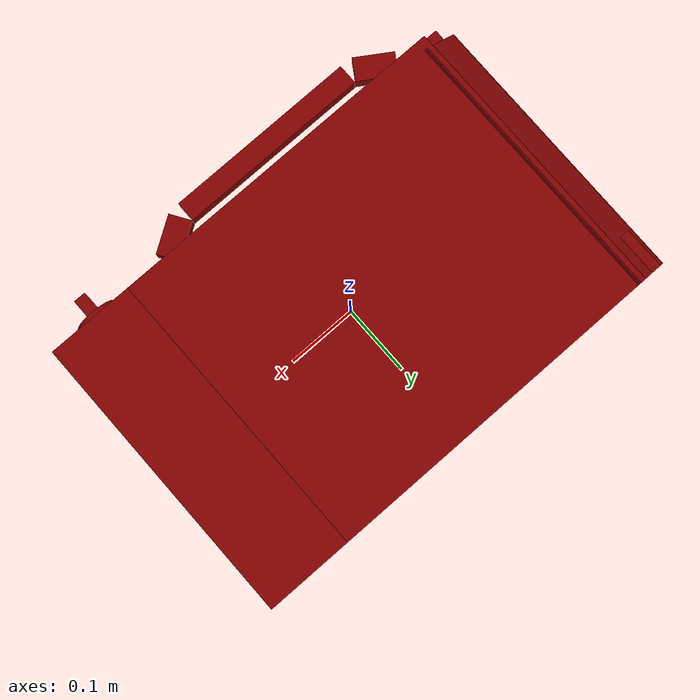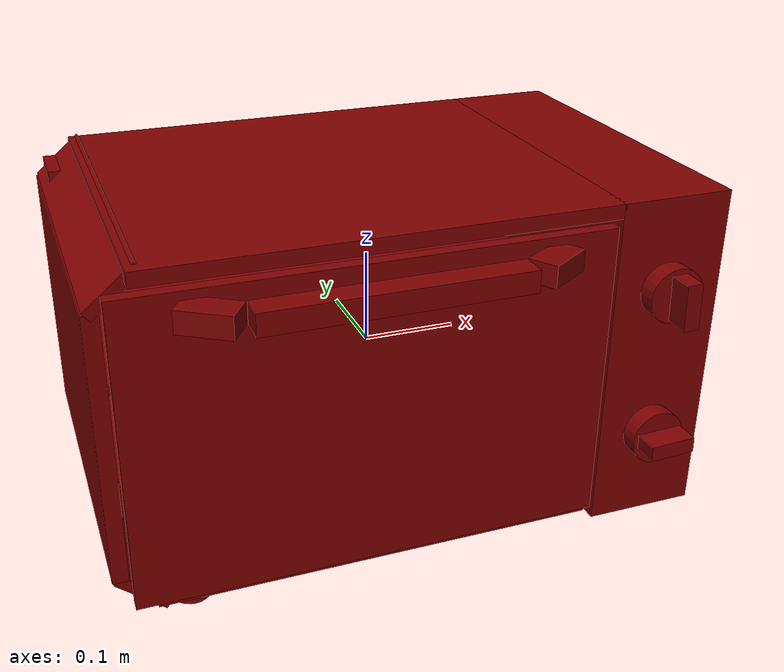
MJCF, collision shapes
<?xml version='1.0' encoding='UTF-8'?>
<mujoco model="model">
  <option timestep="0.002" gravity="0.0 0.0 -9.81"/>
  <compiler angle="radian"/>
  <asset>
    <mesh file="visuals/door.obj" name="door_vis"/>
    <mesh file="visuals/knob_temp.obj" name="knob_temp_vis"/>
    <mesh file="visuals/knob_time.obj" name="knob_time_vis"/>
    <mesh file="visuals/rack0.obj" name="rack0_vis"/>
    <mesh file="visuals/rack1.obj" name="rack1_vis"/>
    <mesh file="visuals/Body001.obj" name="Body001_vis"/>
    <mesh file="visuals/window.obj" name="window_vis"/>
    <texture file="visuals/T_BC001.png" name="Body001_material" type="2d"/>
    <material name="Body001_material" rgba="1 1 1 1.0" texture="Body001_material" shininess="0.5863645374774933" specular="1"/>
    <texture file="visuals/T_BC001.png" name="door_material" type="2d"/>
    <material name="door_material" rgba="1 1 1 1.0" texture="door_material" shininess="0.5863645374774933" specular="1"/>
    <texture file="visuals/T_BC001.png" name="window_material" type="2d"/>
    <material name="window_material" rgba="1 1 1 0.800000011920929" texture="window_material" shininess="0.5863645374774933" specular="0.3103448502657381"/>
    <texture file="visuals/T_BC001.png" name="knob_temp_material" type="2d"/>
    <material name="knob_temp_material" rgba="1 1 1 1.0" texture="knob_temp_material" shininess="0.5863645374774933" specular="0.3103448502657381"/>
    <texture file="visuals/T_BC001.png" name="knob_time_material" type="2d"/>
    <material name="knob_time_material" rgba="1 1 1 1.0" texture="knob_time_material" shininess="0.5863645374774933" specular="0.3103448502657381"/>
    <texture file="visuals/T_BC001.png" name="rack0_material" type="2d"/>
    <material name="rack0_material" rgba="1 1 1 1.0" texture="rack0_material" shininess="0.5863645374774933" specular="2"/>
    <texture file="visuals/T_BC001.png" name="rack1_material" type="2d"/>
    <material name="rack1_material" rgba="1 1 1 1.0" texture="rack1_material" shininess="0.5863645374774933" specular="2"/>
  </asset>
  <default>
    <default class="visual">
      <geom conaffinity="0" contype="0" group="1" type="mesh"/>
    </default>
    <default class="collision">
      <geom group="0" rgba="0.5 0 0 0.5"/>
    </default>
    <default class="spawn">
      <geom group="0" rgba="1 1 1 0.5" contype="0" conaffinity="0"/>
      <site group="0" rgba="1 1 1 0.5"/>
    </default>
    <default class="region">
      <geom group="1" conaffinity="0" contype="0" rgba="0 1 0 0"/>
    </default>
  </default>
  <worldbody>
    <body>
      <body name="object">
        <geom mesh="Body001_vis" type="mesh" solimp="0.998 0.998 0.001" solref="0.001 1" friction="0.95 0.3 0.1" class="visual" material="Body001_material"/>
        <geom class="collision" type="box" pos="0.25272933 0.02331152 0.01222016" size="0.05897073820233345 0.19725219905376434 0.17778943479061127" quat="1.0 0.0 0.0 0.0"/>
        <geom class="collision" type="box" pos="-0.30200410 0.03013139 0.01165119" size="0.00800418108701706 0.1904323399066925 0.1385304182767868" quat="1.0 0.0 0.0 0.0"/>
        <geom class="collision" type="box" pos="-0.03754369 0.02331152 0.18256289" size="0.23364128172397614 0.19725219905376434 0.007446689996868372" quat="1.0 0.0 0.0 0.0"/>
        <geom class="collision" type="box" pos="-0.03837925 0.03040962 -0.15685774" size="0.23049984872341156 0.1901540905237198 0.009127474389970303" quat="1.0 0.0 0.0 0.0"/>
        <geom class="collision" type="box" pos="-0.05411016 0.19189141 0.01269501" size="0.24623076617717743 0.028672317042946815 0.15805135667324066" quat="1.0 0.0 0.0 0.0"/>
        <geom class="collision" type="cylinder" pos="0.23425351 -0.11958062 -0.17701067" size="0.020263822749257088 0.011531293392181396" quat="1.0 0.0 0.0 0.0"/>
        <geom class="collision" type="cylinder" pos="0.23425351 0.18865610 -0.17701067" size="0.020263822749257088 0.011531293392181396" quat="1.0 0.0 0.0 0.0"/>
        <geom class="collision" type="cylinder" pos="-0.23016416 0.18865610 -0.17701067" size="0.020263822749257088 0.011531293392181396" quat="1.0 0.0 0.0 0.0"/>
        <geom class="collision" type="cylinder" pos="-0.23016416 -0.11958062 -0.17701067" size="0.020263822749257088 0.011531293392181396" quat="1.0 0.0 0.0 0.0"/>
        <geom class="collision" type="box" pos="-0.29419994 0.00520551 0.06341933" size="0.008700746111571789 0.13473139703273773 0.0021241067443042994" quat="1.0 0.0 0.0 0.0"/>
        <geom class="collision" type="box" pos="-0.29419994 0.00520551 -0.03959116" size="0.008700746111571789 0.13473139703273773 0.0021241067443042994" quat="1.0 0.0 0.0 0.0"/>
        <geom class="collision" type="box" pos="0.18842070 0.00520551 0.06341933" size="0.008700746111571789 0.13473139703273773 0.0021241067443042994" quat="1.0 0.0 0.0 0.0"/>
        <geom class="collision" type="box" pos="0.18842070 0.00520551 -0.03959116" size="0.008700746111571789 0.13473139703273773 0.0021241067443042994" quat="1.0 0.0 0.0 0.0"/>
        <geom class="collision" type="box" pos="-0.28129500 0.03013139 0.16804570" size="0.00578901544213295 0.1904323399066925 0.030844226479530334" quat="0.9063077569007874 0.0 0.4226182699203491 0.0"/>
        <geom class="collision" type="box" pos="-0.28129500 0.03013139 -0.14454699" size="0.00578901544213295 0.1904323399066925 0.030844226479530334" quat="0.9063077569007874 0.0 -0.4226183593273163 0.0"/>
        <body name="door">
          <joint axis="1.0 0.0 0.0" pos="-0.05220159 -0.17712106 -0.15060028" limited="true" name="door_joint" range="0.0 1.3707963267948966" type="hinge" damping="1" frictionloss="1" armature=".01" stiffness="0.5" springref="-0.5"/>
          <geom mesh="door_vis" type="mesh" solimp="0.998 0.998 0.001" solref="0.001 1" friction="0.95 0.3 0.1" class="visual" material="door_material"/>
          <geom class="collision" type="box" pos="-0.05133383 -0.16828935 0.00825309" size="0.24069996178150177 0.006600325461477041 0.15896683931350708" quat="1.0 0.0 0.0 0.0" name="door_main"/>
          <geom class="collision" type="box" pos="-0.04623489 -0.20639612 0.14724454" size="0.13011981546878815 0.013437379151582718 0.011193021200597286" quat="1.0 0.0 0.0 0.0" name="door_handle_main"/>
          <geom class="collision" type="box" pos="0.11474181 -0.19134556 0.14724454" size="0.02588142268359661 0.015240466222167015 0.011193021200597286" quat="0.9593562483787537 0.0 0.0 0.2821976840496063"/>
          <geom class="collision" type="box" pos="-0.20836979 -0.19175615 0.14724454" size="0.026639731600880623 0.015240466222167015 0.011193021200597286" quat="0.9593562483787537 0.0 -0.0 -0.2821976840496063"/>
          <body name="window">
            <geom mesh="window_vis" type="mesh" solimp="0.998 0.998 0.001" solref="0.001 1" friction="0.95 0.3 0.1" class="visual" material="window_material"/>
            <geom class="collision" type="box" pos="-0.04972996 -0.17220136 0.02346870" size="0.17526189982891083 0.00031763094011694193 0.0971519947052002" quat="1.0 0.0 0.0 0.0"/>
          </body>
        </body>
        <body name="knob_temp">
          <joint axis="0.0 1.0 0.0" pos="0.24962483 -0.19357192 -0.06553804" limited="true" name="knob_temp_joint" range="0.0 3.3161255787892263" type="hinge" damping="0.05" frictionloss="0.75" armature="1"/>
          <geom mesh="knob_temp_vis" type="mesh" solimp="0.998 0.998 0.001" solref="0.001 1" friction="0.95 0.3 0.1" class="visual" material="knob_temp_material"/>
          <geom class="collision" type="cylinder" pos="0.24965122 -0.18514786 -0.06560408" size="0.028993062674999237 0.009548208676278591" quat="0.2632390856742859 0.2632390856742859 0.6562812924385071 -0.6562813520431519" friction="100 0.5 0.01"/>
          <geom class="collision" type="box" pos="0.25072011 -0.20639740 -0.06471035" size="0.008227339945733547 0.014146728441119194 0.024297624826431274" quat="0.7210630774497986 0.0 0.6928694248199463 0.0" name="knob_temp_main" friction="100 0.5 0.01"/>
        </body>
        <body name="knob_time">
          <joint axis="0.0 1.0 0.0" pos="0.24979161 -0.19357192 0.09528438" limited="true" name="knob_time_joint" range="0.0 4.101523742186674" type="hinge" damping="0.05" frictionloss="0.75" armature="1"/>
          <geom mesh="knob_time_vis" type="mesh" solimp="0.998 0.998 0.001" solref="0.001 1" friction="0.95 0.3 0.1" class="visual" material="knob_time_material"/>
          <geom class="collision" type="cylinder" pos="0.24972557 -0.18514786 0.09525795" size="0.028993062674999237 0.009548208676278591" quat="0.2779228687286377 0.2779228091239929 -0.6501991748809814 0.6501991152763367" friction="100 0.5 0.01"/>
          <geom class="collision" type="box" pos="0.25061932 -0.20639740 0.09418906" size="0.008227339945733547 0.014146728441119194 0.024297624826431274" quat="0.019935911521315575 0.0 0.9998012781143188 0.0" name="knob_time_main" friction="100 0.5 0.01"/>
        </body>
        <body name="rack0">
          <geom class="region" name="reg_rack0" type="box" pos="-0.05327016000000001 0.005315915000000004 0.018152224999999998" size="0.23143889 0.150371495 0.046268185"/>
          <joint axis="0.0 -1.0 0.0" pos="-0.05226756 0.00574174 -0.04722606" limited="true" name="rack0_joint" range="0.0 0.25" type="slide" damping="1" frictionloss="1" armature=".01" stiffness="0.05"/>
          <geom mesh="rack0_vis" type="mesh" solimp="0.998 0.998 0.001" solref="0.001 1" friction="0.95 0.3 0.1" class="visual" material="rack0_material"/>
          <geom class="collision" type="box" pos="-0.05338604 0.01000337 -0.03263851" size="0.239394411444664 0.15144510567188263 0.0036516934633255005" quat="1.0 0.0 0.0 0.0"/>
          <geom class="collision" type="box" pos="-0.05319853 -0.14559800 -0.04694998" size="0.2392069548368454 0.003862110897898674 0.01796313375234604" quat="1.0 0.0 0.0 0.0"/>
        </body>
        <body name="rack1">
          <geom class="region" name="reg_rack1" type="box" pos="-0.05327016000000001 0.0053159750000000006 0.11470124" size="0.23143889 0.150371495 0.038908609999999996"/>
          <joint axis="0.0 -1.0 0.0" pos="-0.05226848 0.00625024 0.07065878" limited="true" name="rack1_joint" range="0.0 0.25" type="slide" damping="1" frictionloss="1" armature=".01" stiffness="0.05"/>
          <geom mesh="rack1_vis" type="mesh" solimp="0.998 0.998 0.001" solref="0.001 1" friction="0.95 0.3 0.1" class="visual" material="rack1_material"/>
          <geom class="collision" type="box" pos="-0.05338604 0.00612738 0.07098006" size="0.23939435184001923 0.15463697910308838 0.0042443713173270226" quat="1.0 0.0 0.0 0.0"/>
        </body>
        <geom class="region" name="reg_main" type="box" pos="-1.4999999992104662e-08 0.021993335000000003 -4.999999997368221e-09" size="0.314201245 0.200114395 0.192398545"/>
      </body>
    </body>
  </worldbody>
  <actuator>
    <motor name="door_joint_actuator" joint="door_joint" gear="50"/>
    <motor name="knob_temp_joint_actuator" joint="knob_temp_joint" gear="50"/>
    <motor name="knob_time_joint_actuator" joint="knob_time_joint" gear="50"/>
    <motor name="rack0_joint_actuator" joint="rack0_joint" gear="50"/>
    <motor name="rack1_joint_actuator" joint="rack1_joint" gear="50"/>
  </actuator>
</mujoco>
